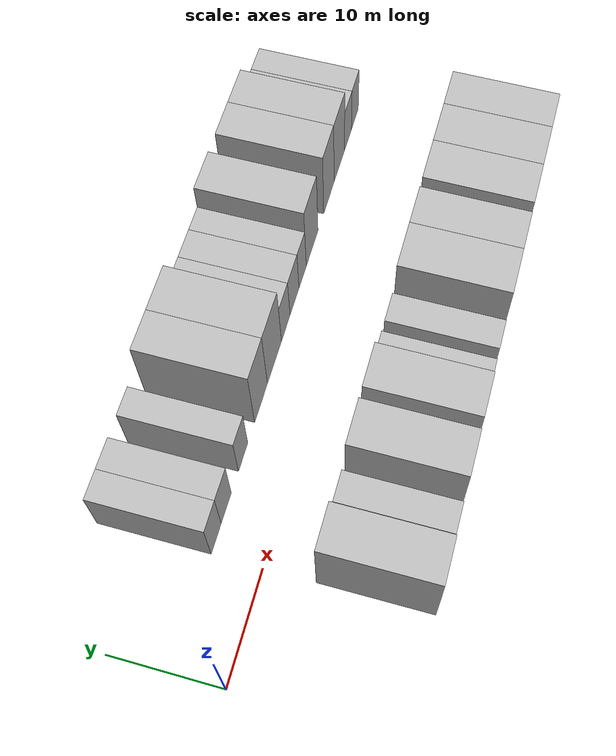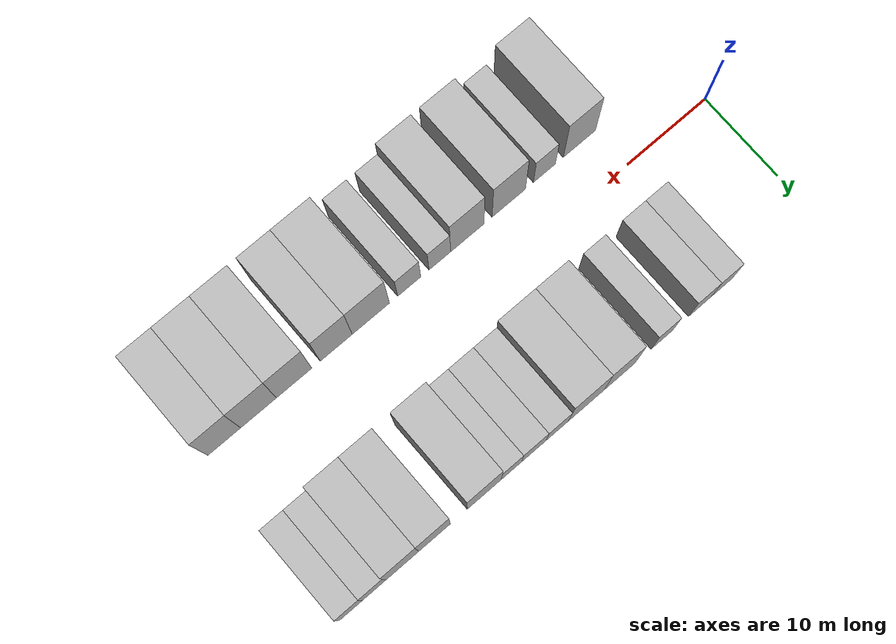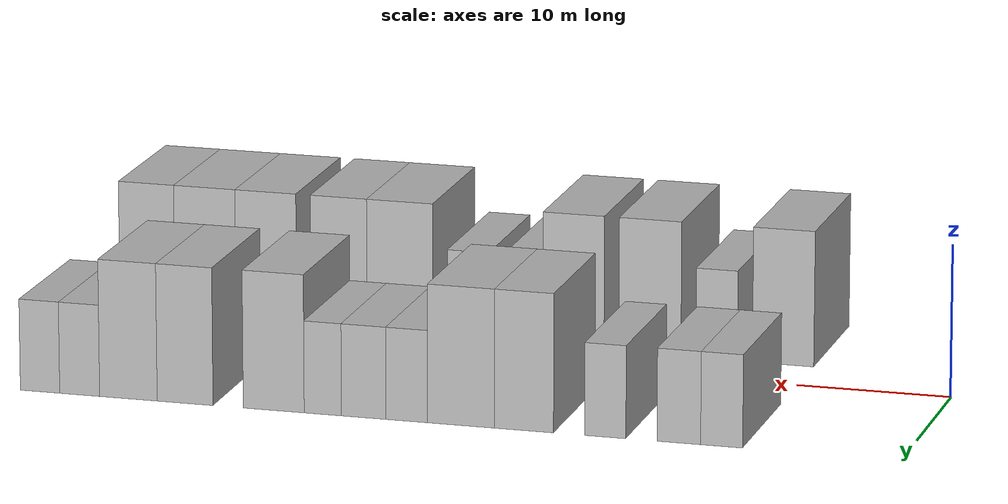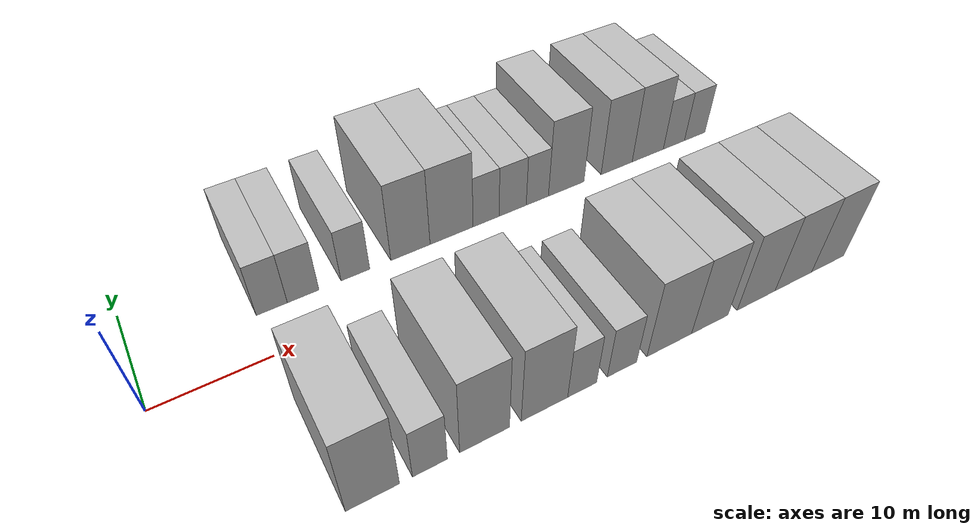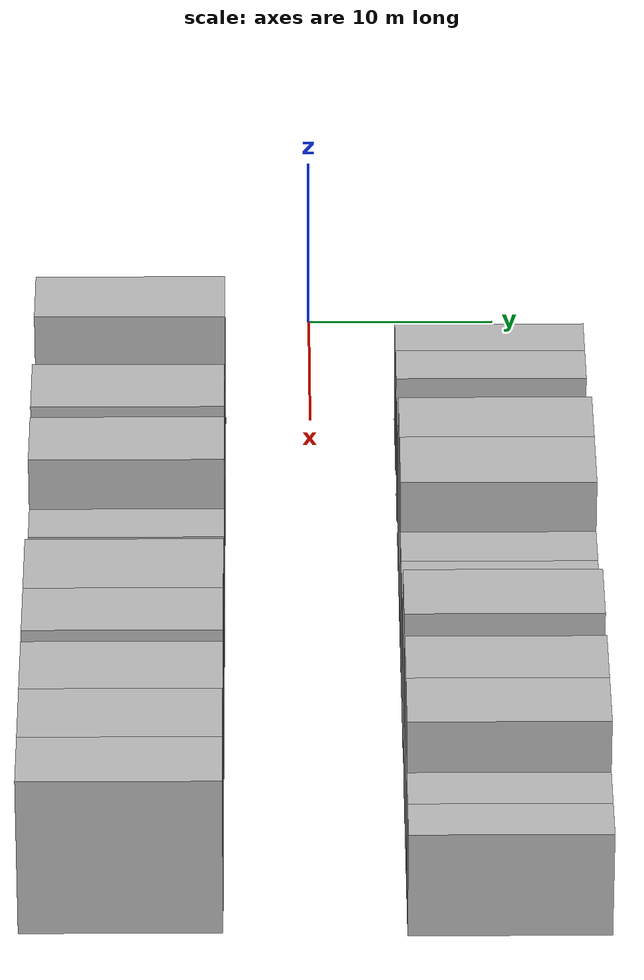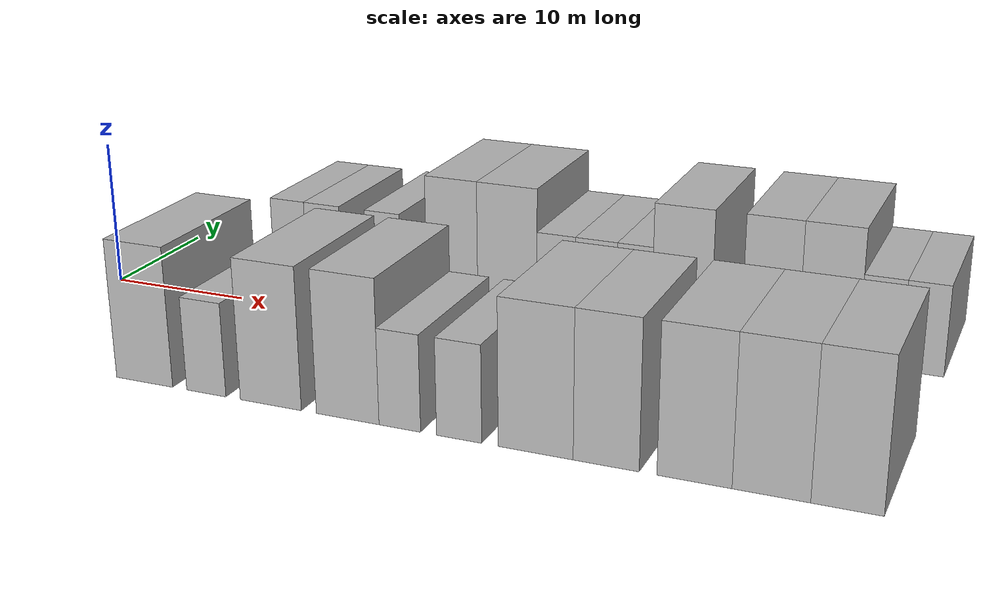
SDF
<sdf version="1.6">
 <world name="default">
  <model name="building_1">
   <static>1</static>
   <pose>11.3415 9.5000 0 0.000000 0.000000 1.570796</pose>
   <link name="link">
    <pose>0 0 3.00 0 0 0</pose>
    <collision name="collision"><geometry><box><size>10.0000 2.6829 6.0000</size></box></geometry></collision>
    <visual name="visual">
     <cast_shadows>0</cast_shadows>
     <geometry><box><size>10.0000 2.6829 6.0000</size></box></geometry>
     <material>
      <script>
       <uri>model://HANNAS_wall/materials/scripts</uri>
       <uri>model://HANNAS_wall/materials/textures</uri>
       <name>vrc/HANNAS_wall</name>
      </script>
     </material>
    </visual>
   </link>
  </model>
  <model name="building_2">
   <static>1</static>
   <pose>14.0803 9.5000 0 0.000000 0.000000 1.570796</pose>
   <link name="link">
    <pose>0 0 3.00 0 0 0</pose>
    <collision name="collision"><geometry><box><size>10.0000 2.7948 6.0000</size></box></geometry></collision>
    <visual name="visual">
     <cast_shadows>0</cast_shadows>
     <geometry><box><size>10.0000 2.7948 6.0000</size></box></geometry>
     <material>
      <script>
       <uri>model://HANNAS_wall/materials/scripts</uri>
       <uri>model://HANNAS_wall/materials/textures</uri>
       <name>vrc/HANNAS_wall</name>
      </script>
     </material>
    </visual>
   </link>
  </model>
  <model name="building_3">
   <static>1</static>
   <pose>18.8091 9.5000 0 0.000000 0.000000 1.570796</pose>
   <link name="link">
    <pose>0 0 3.00 0 0 0</pose>
    <collision name="collision"><geometry><box><size>10.0000 2.6627 6.0000</size></box></geometry></collision>
    <visual name="visual">
     <cast_shadows>0</cast_shadows>
     <geometry><box><size>10.0000 2.6627 6.0000</size></box></geometry>
     <material>
      <script>
       <uri>model://HANNAS_wall/materials/scripts</uri>
       <uri>model://HANNAS_wall/materials/textures</uri>
       <name>vrc/HANNAS_wall</name>
      </script>
     </material>
    </visual>
   </link>
  </model>
  <model name="building_4">
   <static>1</static>
   <pose>24.0546 9.5000 0 0.000000 0.000000 1.570796</pose>
   <link name="link">
    <pose>0 0 4.50 0 0 0</pose>
    <collision name="collision"><geometry><box><size>10.0000 3.8284 9.0000</size></box></geometry></collision>
    <visual name="visual">
     <cast_shadows>0</cast_shadows>
     <geometry><box><size>10.0000 3.8284 9.0000</size></box></geometry>
     <material>
      <script>
       <uri>model://HANNAS_wall/materials/scripts</uri>
       <uri>model://HANNAS_wall/materials/textures</uri>
       <name>vrc/HANNAS_wall</name>
      </script>
     </material>
    </visual>
   </link>
  </model>
  <model name="building_5">
   <static>1</static>
   <pose>28.1454 9.5000 0 0.000000 0.000000 1.570796</pose>
   <link name="link">
    <pose>0 0 4.50 0 0 0</pose>
    <collision name="collision"><geometry><box><size>10.0000 4.3533 9.0000</size></box></geometry></collision>
    <visual name="visual">
     <cast_shadows>0</cast_shadows>
     <geometry><box><size>10.0000 4.3533 9.0000</size></box></geometry>
     <material>
      <script>
       <uri>model://HANNAS_wall/materials/scripts</uri>
       <uri>model://HANNAS_wall/materials/textures</uri>
       <name>vrc/HANNAS_wall</name>
      </script>
     </material>
    </visual>
   </link>
  </model>
  <model name="building_6">
   <static>1</static>
   <pose>31.6854 9.5000 0 0.000000 0.000000 1.570796</pose>
   <link name="link">
    <pose>0 0 3.00 0 0 0</pose>
    <collision name="collision"><geometry><box><size>10.0000 2.7267 6.0000</size></box></geometry></collision>
    <visual name="visual">
     <cast_shadows>0</cast_shadows>
     <geometry><box><size>10.0000 2.7267 6.0000</size></box></geometry>
     <material>
      <script>
       <uri>model://HANNAS_wall/materials/scripts</uri>
       <uri>model://HANNAS_wall/materials/textures</uri>
       <name>vrc/HANNAS_wall</name>
      </script>
     </material>
    </visual>
   </link>
  </model>
  <model name="building_7">
   <static>1</static>
   <pose>34.5057 9.5000 0 0.000000 0.000000 1.570796</pose>
   <link name="link">
    <pose>0 0 3.00 0 0 0</pose>
    <collision name="collision"><geometry><box><size>10.0000 2.9138 6.0000</size></box></geometry></collision>
    <visual name="visual">
     <cast_shadows>0</cast_shadows>
     <geometry><box><size>10.0000 2.9138 6.0000</size></box></geometry>
     <material>
      <script>
       <uri>model://HANNAS_wall/materials/scripts</uri>
       <uri>model://HANNAS_wall/materials/textures</uri>
       <name>vrc/HANNAS_wall</name>
      </script>
     </material>
    </visual>
   </link>
  </model>
  <model name="building_8">
   <static>1</static>
   <pose>37.1857 9.5000 0 0.000000 0.000000 1.570796</pose>
   <link name="link">
    <pose>0 0 3.00 0 0 0</pose>
    <collision name="collision"><geometry><box><size>10.0000 2.4462 6.0000</size></box></geometry></collision>
    <visual name="visual">
     <cast_shadows>0</cast_shadows>
     <geometry><box><size>10.0000 2.4462 6.0000</size></box></geometry>
     <material>
      <script>
       <uri>model://HANNAS_wall/materials/scripts</uri>
       <uri>model://HANNAS_wall/materials/textures</uri>
       <name>vrc/HANNAS_wall</name>
      </script>
     </material>
    </visual>
   </link>
  </model>
  <model name="building_9">
   <static>1</static>
   <pose>40.4200 9.5000 0 0.000000 0.000000 1.570796</pose>
   <link name="link">
    <pose>0 0 4.50 0 0 0</pose>
    <collision name="collision"><geometry><box><size>10.0000 4.0225 9.0000</size></box></geometry></collision>
    <visual name="visual">
     <cast_shadows>0</cast_shadows>
     <geometry><box><size>10.0000 4.0225 9.0000</size></box></geometry>
     <material>
      <script>
       <uri>model://HANNAS_wall/materials/scripts</uri>
       <uri>model://HANNAS_wall/materials/textures</uri>
       <name>vrc/HANNAS_wall</name>
      </script>
     </material>
    </visual>
   </link>
  </model>
  <model name="building_10">
   <static>1</static>
   <pose>46.2877 9.5000 0 0.000000 0.000000 1.570796</pose>
   <link name="link">
    <pose>0 0 4.50 0 0 0</pose>
    <collision name="collision"><geometry><box><size>10.0000 3.7129 9.0000</size></box></geometry></collision>
    <visual name="visual">
     <cast_shadows>0</cast_shadows>
     <geometry><box><size>10.0000 3.7129 9.0000</size></box></geometry>
     <material>
      <script>
       <uri>model://HANNAS_wall/materials/scripts</uri>
       <uri>model://HANNAS_wall/materials/textures</uri>
       <name>vrc/HANNAS_wall</name>
      </script>
     </material>
    </visual>
   </link>
  </model>
  <model name="building_11">
   <static>1</static>
   <pose>50.0635 9.5000 0 0.000000 0.000000 1.570796</pose>
   <link name="link">
    <pose>0 0 4.50 0 0 0</pose>
    <collision name="collision"><geometry><box><size>10.0000 3.8388 9.0000</size></box></geometry></collision>
    <visual name="visual">
     <cast_shadows>0</cast_shadows>
     <geometry><box><size>10.0000 3.8388 9.0000</size></box></geometry>
     <material>
      <script>
       <uri>model://HANNAS_wall/materials/scripts</uri>
       <uri>model://HANNAS_wall/materials/textures</uri>
       <name>vrc/HANNAS_wall</name>
      </script>
     </material>
    </visual>
   </link>
  </model>
  <model name="building_12">
   <static>1</static>
   <pose>53.3202 9.5000 0 0.000000 0.000000 1.570796</pose>
   <link name="link">
    <pose>0 0 3.00 0 0 0</pose>
    <collision name="collision"><geometry><box><size>10.0000 2.6747 6.0000</size></box></geometry></collision>
    <visual name="visual">
     <cast_shadows>0</cast_shadows>
     <geometry><box><size>10.0000 2.6747 6.0000</size></box></geometry>
     <material>
      <script>
       <uri>model://HANNAS_wall/materials/scripts</uri>
       <uri>model://HANNAS_wall/materials/textures</uri>
       <name>vrc/HANNAS_wall</name>
      </script>
     </material>
    </visual>
   </link>
  </model>
  <model name="building_13">
   <static>1</static>
   <pose>55.9779 9.5000 0 0.000000 0.000000 1.570796</pose>
   <link name="link">
    <pose>0 0 3.00 0 0 0</pose>
    <collision name="collision"><geometry><box><size>10.0000 2.6407 6.0000</size></box></geometry></collision>
    <visual name="visual">
     <cast_shadows>0</cast_shadows>
     <geometry><box><size>10.0000 2.6407 6.0000</size></box></geometry>
     <material>
      <script>
       <uri>model://HANNAS_wall/materials/scripts</uri>
       <uri>model://HANNAS_wall/materials/textures</uri>
       <name>vrc/HANNAS_wall</name>
      </script>
     </material>
    </visual>
   </link>
  </model>
  <model name="building_49">
   <static>1</static>
   <pose>12.0303 -9.5000 0 0.000000 0.000000 1.570796</pose>
   <link name="link">
    <pose>0 0 4.50 0 0 0</pose>
    <collision name="collision"><geometry><box><size>10.0000 4.0607 9.0000</size></box></geometry></collision>
    <visual name="visual">
     <cast_shadows>0</cast_shadows>
     <geometry><box><size>10.0000 4.0607 9.0000</size></box></geometry>
     <material>
      <script>
       <uri>model://HANNAS_wall/materials/scripts</uri>
       <uri>model://HANNAS_wall/materials/textures</uri>
       <name>vrc/HANNAS_wall</name>
      </script>
     </material>
    </visual>
   </link>
  </model>
  <model name="building_50">
   <static>1</static>
   <pose>16.4370 -9.5000 0 0.000000 0.000000 1.570796</pose>
   <link name="link">
    <pose>0 0 3.00 0 0 0</pose>
    <collision name="collision"><geometry><box><size>10.0000 2.7527 6.0000</size></box></geometry></collision>
    <visual name="visual">
     <cast_shadows>0</cast_shadows>
     <geometry><box><size>10.0000 2.7527 6.0000</size></box></geometry>
     <material>
      <script>
       <uri>model://HANNAS_wall/materials/scripts</uri>
       <uri>model://HANNAS_wall/materials/textures</uri>
       <name>vrc/HANNAS_wall</name>
      </script>
     </material>
    </visual>
   </link>
  </model>
  <model name="building_51">
   <static>1</static>
   <pose>20.8872 -9.5000 0 0.000000 0.000000 1.570796</pose>
   <link name="link">
    <pose>0 0 4.50 0 0 0</pose>
    <collision name="collision"><geometry><box><size>10.0000 4.1477 9.0000</size></box></geometry></collision>
    <visual name="visual">
     <cast_shadows>0</cast_shadows>
     <geometry><box><size>10.0000 4.1477 9.0000</size></box></geometry>
     <material>
      <script>
       <uri>model://HANNAS_wall/materials/scripts</uri>
       <uri>model://HANNAS_wall/materials/textures</uri>
       <name>vrc/HANNAS_wall</name>
      </script>
     </material>
    </visual>
   </link>
  </model>
  <model name="building_52">
   <static>1</static>
   <pose>26.0110 -9.5000 0 0.000000 0.000000 1.570796</pose>
   <link name="link">
    <pose>0 0 4.50 0 0 0</pose>
    <collision name="collision"><geometry><box><size>10.0000 4.0998 9.0000</size></box></geometry></collision>
    <visual name="visual">
     <cast_shadows>0</cast_shadows>
     <geometry><box><size>10.0000 4.0998 9.0000</size></box></geometry>
     <material>
      <script>
       <uri>model://HANNAS_wall/materials/scripts</uri>
       <uri>model://HANNAS_wall/materials/textures</uri>
       <name>vrc/HANNAS_wall</name>
      </script>
     </material>
    </visual>
   </link>
  </model>
  <model name="building_53">
   <static>1</static>
   <pose>29.3863 -9.5000 0 0.000000 0.000000 1.570796</pose>
   <link name="link">
    <pose>0 0 3.00 0 0 0</pose>
    <collision name="collision"><geometry><box><size>10.0000 2.6509 6.0000</size></box></geometry></collision>
    <visual name="visual">
     <cast_shadows>0</cast_shadows>
     <geometry><box><size>10.0000 2.6509 6.0000</size></box></geometry>
     <material>
      <script>
       <uri>model://HANNAS_wall/materials/scripts</uri>
       <uri>model://HANNAS_wall/materials/textures</uri>
       <name>vrc/HANNAS_wall</name>
      </script>
     </material>
    </visual>
   </link>
  </model>
  <model name="building_54">
   <static>1</static>
   <pose>33.1118 -9.5000 0 0.000000 0.000000 1.570796</pose>
   <link name="link">
    <pose>0 0 3.00 0 0 0</pose>
    <collision name="collision"><geometry><box><size>10.0000 2.8001 6.0000</size></box></geometry></collision>
    <visual name="visual">
     <cast_shadows>0</cast_shadows>
     <geometry><box><size>10.0000 2.8001 6.0000</size></box></geometry>
     <material>
      <script>
       <uri>model://HANNAS_wall/materials/scripts</uri>
       <uri>model://HANNAS_wall/materials/textures</uri>
       <name>vrc/HANNAS_wall</name>
      </script>
     </material>
    </visual>
   </link>
  </model>
  <model name="building_55">
   <static>1</static>
   <pose>37.7510 -9.5000 0 0.000000 0.000000 1.570796</pose>
   <link name="link">
    <pose>0 0 4.50 0 0 0</pose>
    <collision name="collision"><geometry><box><size>10.0000 4.4783 9.0000</size></box></geometry></collision>
    <visual name="visual">
     <cast_shadows>0</cast_shadows>
     <geometry><box><size>10.0000 4.4783 9.0000</size></box></geometry>
     <material>
      <script>
       <uri>model://HANNAS_wall/materials/scripts</uri>
       <uri>model://HANNAS_wall/materials/textures</uri>
       <name>vrc/HANNAS_wall</name>
      </script>
     </material>
    </visual>
   </link>
  </model>
  <model name="building_56">
   <static>1</static>
   <pose>41.8994 -9.5000 0 0.000000 0.000000 1.570796</pose>
   <link name="link">
    <pose>0 0 4.50 0 0 0</pose>
    <collision name="collision"><geometry><box><size>10.0000 3.8186 9.0000</size></box></geometry></collision>
    <visual name="visual">
     <cast_shadows>0</cast_shadows>
     <geometry><box><size>10.0000 3.8186 9.0000</size></box></geometry>
     <material>
      <script>
       <uri>model://HANNAS_wall/materials/scripts</uri>
       <uri>model://HANNAS_wall/materials/textures</uri>
       <name>vrc/HANNAS_wall</name>
      </script>
     </material>
    </visual>
   </link>
  </model>
  <model name="building_57">
   <static>1</static>
   <pose>46.8918 -9.5000 0 0.000000 0.000000 1.570796</pose>
   <link name="link">
    <pose>0 0 4.50 0 0 0</pose>
    <collision name="collision"><geometry><box><size>10.0000 4.1661 9.0000</size></box></geometry></collision>
    <visual name="visual">
     <cast_shadows>0</cast_shadows>
     <geometry><box><size>10.0000 4.1661 9.0000</size></box></geometry>
     <material>
      <script>
       <uri>model://HANNAS_wall/materials/scripts</uri>
       <uri>model://HANNAS_wall/materials/textures</uri>
       <name>vrc/HANNAS_wall</name>
      </script>
     </material>
    </visual>
   </link>
  </model>
  <model name="building_58">
   <static>1</static>
   <pose>51.0810 -9.5000 0 0.000000 0.000000 1.570796</pose>
   <link name="link">
    <pose>0 0 4.50 0 0 0</pose>
    <collision name="collision"><geometry><box><size>10.0000 4.2123 9.0000</size></box></geometry></collision>
    <visual name="visual">
     <cast_shadows>0</cast_shadows>
     <geometry><box><size>10.0000 4.2123 9.0000</size></box></geometry>
     <material>
      <script>
       <uri>model://HANNAS_wall/materials/scripts</uri>
       <uri>model://HANNAS_wall/materials/textures</uri>
       <name>vrc/HANNAS_wall</name>
      </script>
     </material>
    </visual>
   </link>
  </model>
  <model name="building_59">
   <static>1</static>
   <pose>55.0966 -9.5000 0 0.000000 0.000000 1.570796</pose>
   <link name="link">
    <pose>0 0 4.50 0 0 0</pose>
    <collision name="collision"><geometry><box><size>10.0000 3.8189 9.0000</size></box></geometry></collision>
    <visual name="visual">
     <cast_shadows>0</cast_shadows>
     <geometry><box><size>10.0000 3.8189 9.0000</size></box></geometry>
     <material>
      <script>
       <uri>model://HANNAS_wall/materials/scripts</uri>
       <uri>model://HANNAS_wall/materials/textures</uri>
       <name>vrc/HANNAS_wall</name>
      </script>
     </material>
    </visual>
   </link>
  </model>
 </world>
</sdf>
